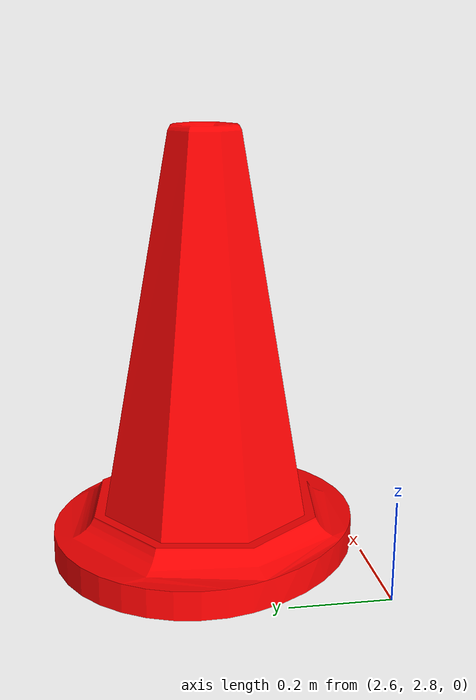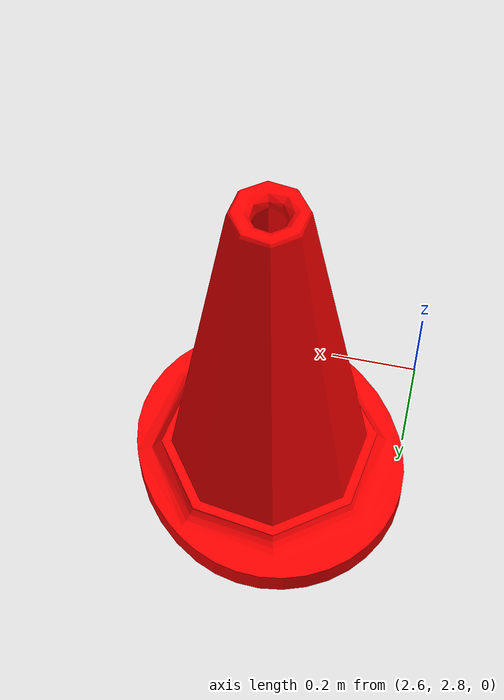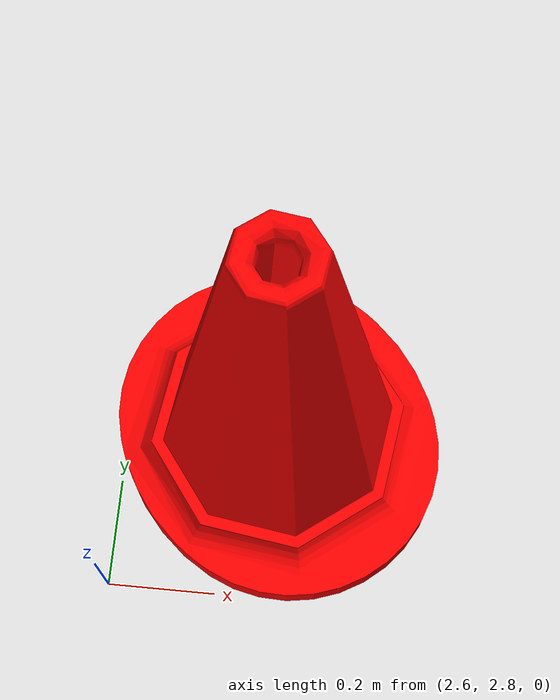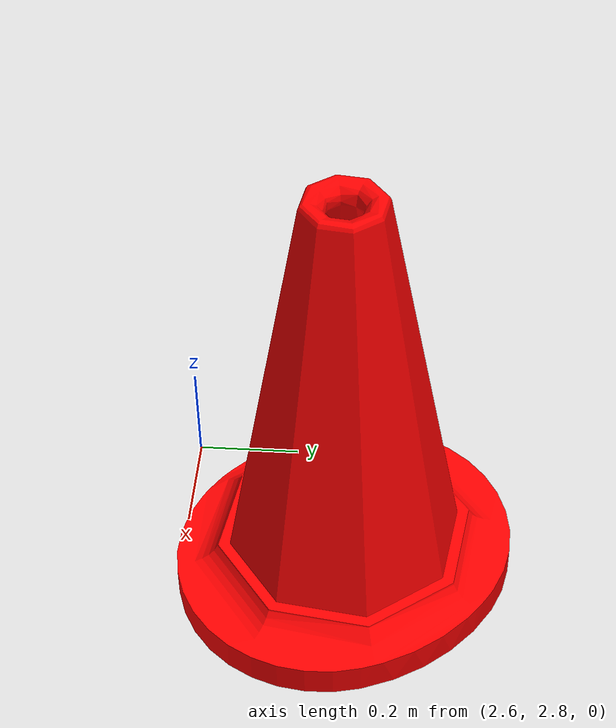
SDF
<?xml version="1.0"?>
<sdf version="1.9">
  <model name="cone_3">
    <static>true</static>
    <link name="link">
      <visual name="visual">
        <geometry>
          <mesh>
            <uri>model://cone_2/meshes/cone_3.stl</uri>
       <scale>0.4 0.4 0.4</scale><!--  0.005 is too small 0.05 is still too large get the best scale and use it here -->
          </mesh>
        </geometry>
        <material>
          <ambient>1 0 0 1</ambient>
          <diffuse>1 0 0 1</diffuse>
        </material>
      </visual>
      <collision name="collision">
        <geometry>
          <mesh>
            <uri>model://cone_2/meshes/cone_3.stl</uri>
          </mesh>
        </geometry>
      </collision>
    </link>
  </model>
</sdf>
